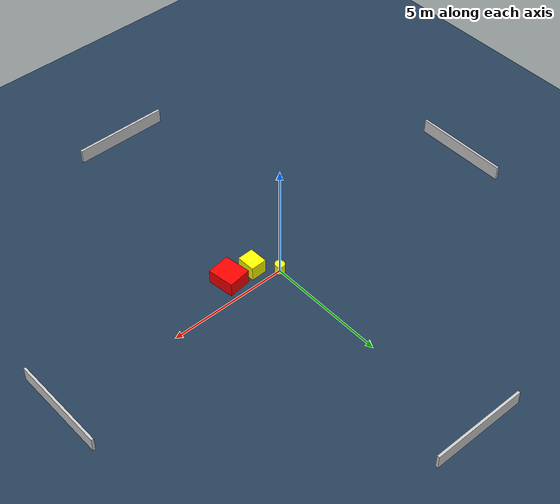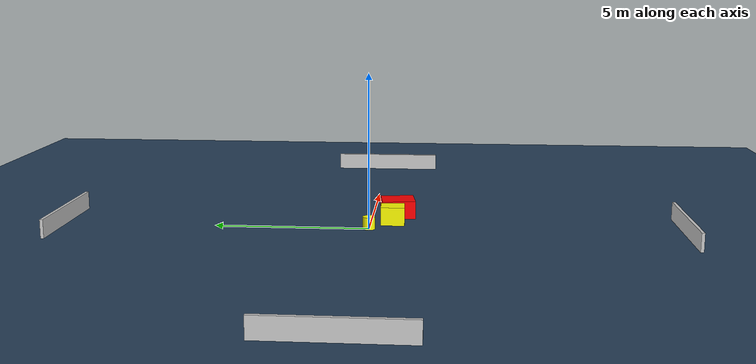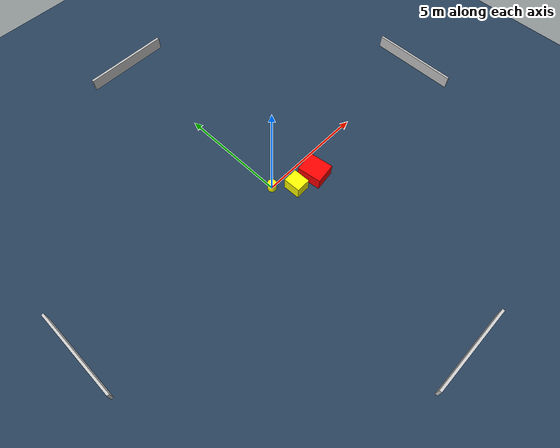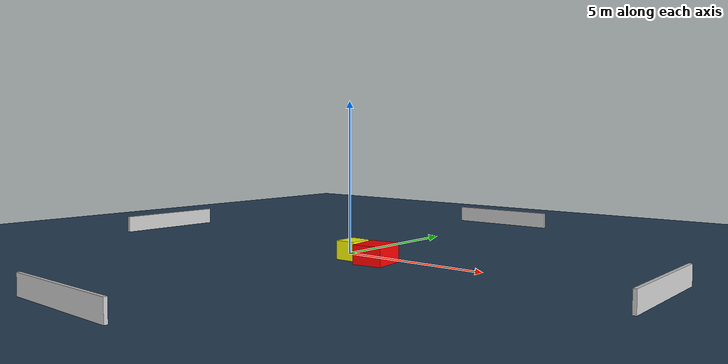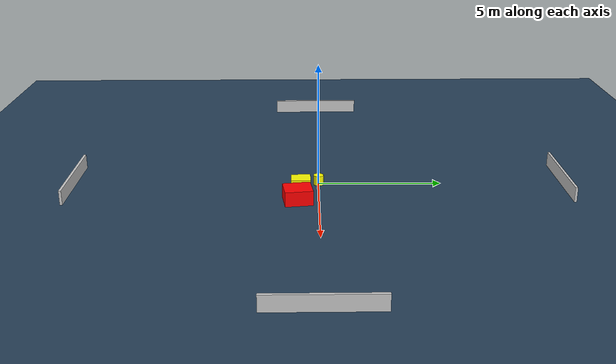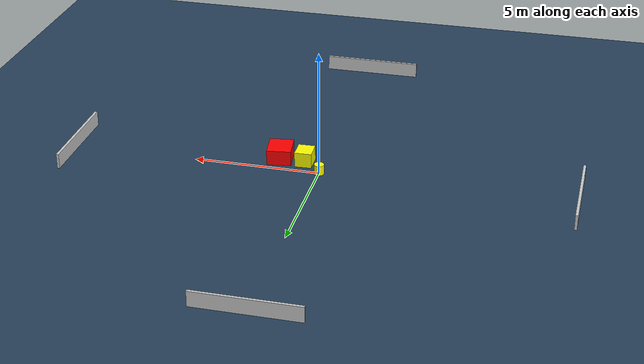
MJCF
<?xml version="1.0" ?>
<mujoco model="generated_environment">
  <option timestep="0.01" integrator="RK4" cone="elliptic"/>
  <default>
    <geom density="1"/>
  </default>
  <asset>
    <texture builtin="gradient" height="3072" name="skybox" rgb1="0.3 0.5 0.7" rgb2="0 0 0" type="skybox" width="512"/>
    <texture builtin="checker" height="300" name="groundplane" rgb1="0.2 0.3 0.4" rgb2="0.1 0.2 0.3" type="2d" width="300"/>
    <material name="groundplane" reflectance="0.2" texrepeat="5 5" texture="groundplane"/>
  </asset>
  <worldbody>
    <light dir="0 0 -1" directional="true" pos="0 0 1.5"/>
    <geom condim="3" friction="0.5 0.005 0.001" material="groundplane" name="floor" pos="0 0 0" size="0 0 0.05" type="plane"/>
    <body name="walls">
      <geom name="wall_1" condim="4" pos="-10.0 0.0 0.3" rgba="0.800000011920929 0.800000011920929 0.800000011920929 1.0" size="0.05 2.0 0.3" type="box"/>
      <geom name="wall_2" condim="4" pos="10.0 0.0 0.3" rgba="0.800000011920929 0.800000011920929 0.800000011920929 1.0" size="0.05 2.0 0.3" type="box"/>
      <geom name="wall_3" condim="4" pos="0.0 -10.0 0.3" rgba="0.800000011920929 0.800000011920929 0.800000011920929 1.0" size="2.0 0.05 0.3" type="box"/>
      <geom name="wall_4" condim="4" pos="0.0 10.0 0.3" rgba="0.800000011920929 0.800000011920929 0.800000011920929 1.0" size="2.0 0.05 0.3" type="box"/>
    </body>
    <body name="robot">
      <joint name="joint_x" type="slide" pos="0 0 0" axis="1 0 0"/>
      <joint name="joint_y" type="slide" pos="0 0 0" axis="0 1 0"/>
      <geom name="robot" type="cylinder" pos="0.0 0.0 0.2" size="0.2 0.2 0.0" mass="5.0" friction="1.0 0.005 0.0001" condim="4" rgba="1.0 1.0 0.0 1.0"/>
    </body>
    <body name="obstacle_1_movable">
      <geom name="obstacle_1_movable" condim="4" pos="0.7520601795914645 -0.7242823774832741 0.3" euler="0 0 181.53675257203452" friction="0.0 0.005 0.001" rgba="1.0 1.0 0.0 1.0" size="0.3343024529445329 0.3879663467935926 0.3" type="box" mass="0.1"/>
      <joint type="free"/>
    </body>
    <body name="obstacle_2_static">
      <geom name="obstacle_2_static" condim="4" pos="1.781731920106026 -0.8420589092618878 0.3" euler="0 0 7.789442870743746" friction="0.0 0.005 0.001" rgba="1.0 0.0 0.0 1.0" size="0.48019788927643076 0.553374930468439 0.3" type="box"/>
    </body>
  </worldbody>
  <actuator>
    <motor name="actuator_x" joint="joint_x" gear="1" ctrlrange="-1 1"/>
    <motor name="actuator_y" joint="joint_y" gear="1" ctrlrange="-1 1"/>
  </actuator>
</mujoco>
